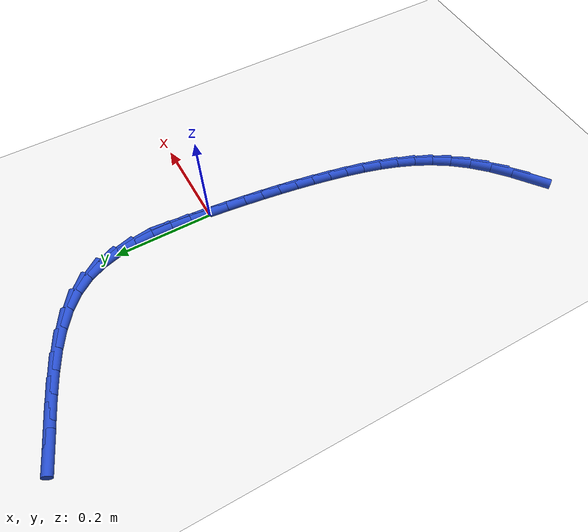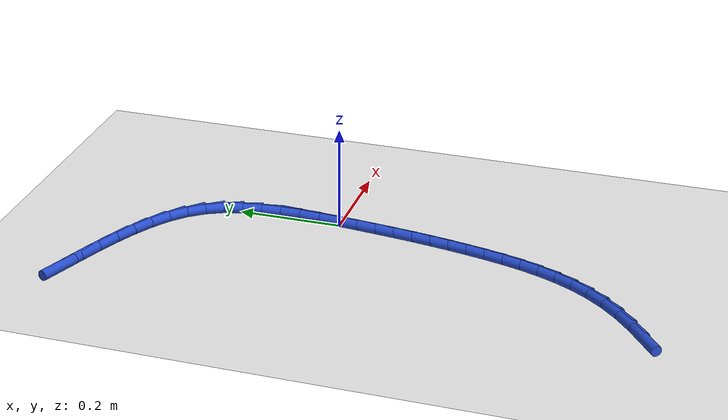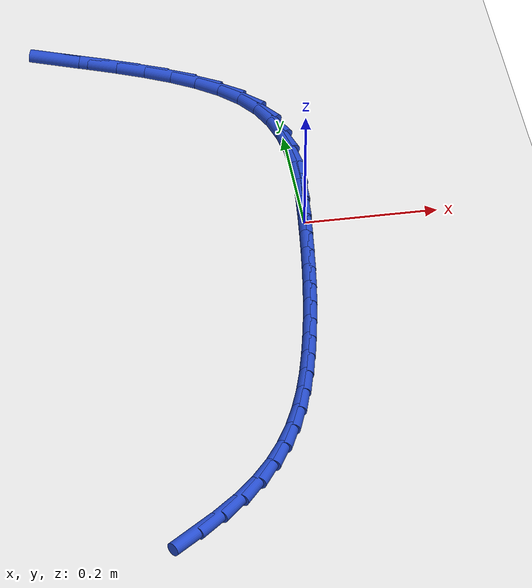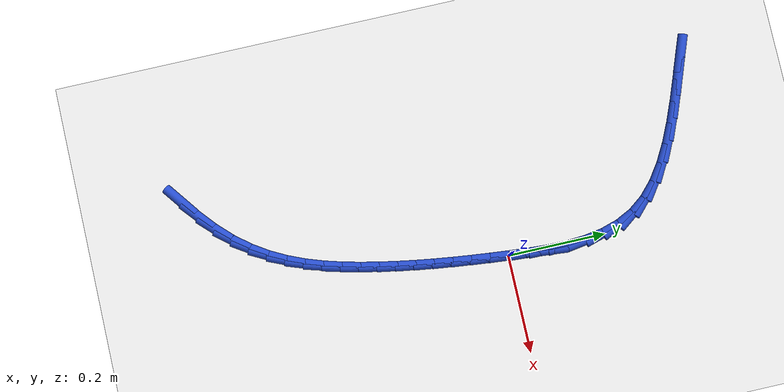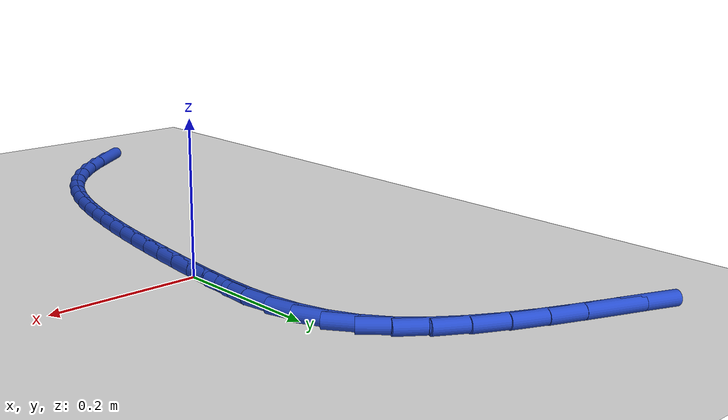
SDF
<sdf version="1.6">
 <world name="default">
  <model name="ground_plane">
   <static>1</static>
   <link name="link">
    <collision name="collision">
     <geometry><plane><normal>0 0 1</normal><size>100 100</size></plane></geometry>
     <surface><friction><ode><mu>100</mu><mu2>50</mu2></ode></friction></surface>
    </collision>
    <visual name="visual">
     <cast_shadows>0</cast_shadows>
     <geometry><plane><normal>0 0 1</normal><size>100 100</size></plane></geometry>
     <material>
      <script><uri>file://media/materials/scripts/gazebo.material</uri><name>Gazebo/WhiteGlow</name></script>
     </material>
    </visual>
   </link>
  </model>
  <model name="line">
   <link name="link_0">
    <pose>2.3418766925686896e-17 0.0 0.01 0 1.57 1.48301899959872</pose>
    <collision name="collision">
     <geometry><cylinder><radius>0.01</radius><length>0.08</length></cylinder></geometry>
    </collision>
    <visual name="visual">
     <material>
      <script><name>Gazebo/Blue</name><uri>file://media/materials/scripts/gazebo.material</uri></script>
     </material>
     <geometry><cylinder><radius>0.01</radius><length>0.08</length></cylinder></geometry>
    </visual>
   </link>
   <link name="link_1">
    <pose>0.0034949813041329756 0.0397141344870754 0.01 0 1.57 1.5102847240519472</pose>
    <collision name="collision">
     <geometry><cylinder><radius>0.01</radius><length>0.08</length></cylinder></geometry>
    </collision>
    <visual name="visual">
     <material>
      <script><name>Gazebo/Blue</name><uri>file://media/materials/scripts/gazebo.material</uri></script>
     </material>
     <geometry><cylinder><radius>0.01</radius><length>0.08</length></cylinder></geometry>
    </visual>
   </link>
   <link name="link_2">
    <pose>0.0059192756810025615 0.07972852129482713 0.01 0 1.57 1.5585514268661935</pose>
    <collision name="collision">
     <geometry><cylinder><radius>0.01</radius><length>0.08</length></cylinder></geometry>
    </collision>
    <visual name="visual">
     <material>
      <script><name>Gazebo/Blue</name><uri>file://media/materials/scripts/gazebo.material</uri></script>
     </material>
     <geometry><cylinder><radius>0.01</radius><length>0.08</length></cylinder></geometry>
    </visual>
   </link>
   <link name="link_3">
    <pose>0.0064058495325591625 0.11946339341128547 0.01 0 1.57 -1.5112361139940027</pose>
    <collision name="collision">
     <geometry><cylinder><radius>0.01</radius><length>0.08</length></cylinder></geometry>
    </collision>
    <visual name="visual">
     <material>
      <script><name>Gazebo/Blue</name><uri>file://media/materials/scripts/gazebo.material</uri></script>
     </material>
     <geometry><cylinder><radius>0.01</radius><length>0.08</length></cylinder></geometry>
    </visual>
   </link>
   <link name="link_4">
    <pose>0.004087669260753157 0.1583389838244806 0.01 0 1.57 -1.4121379047766238</pose>
    <collision name="collision">
     <geometry><cylinder><radius>0.01</radius><length>0.08</length></cylinder></geometry>
    </collision>
    <visual name="visual">
     <material>
      <script><name>Gazebo/Blue</name><uri>file://media/materials/scripts/gazebo.material</uri></script>
     </material>
     <geometry><cylinder><radius>0.01</radius><length>0.08</length></cylinder></geometry>
    </visual>
   </link>
   <link name="link_5">
    <pose>-0.0019022987324650836 0.1957755255224428 0.01 0 1.57 -1.281841797179875</pose>
    <collision name="collision">
     <geometry><cylinder><radius>0.01</radius><length>0.08</length></cylinder></geometry>
    </collision>
    <visual name="visual">
     <material>
      <script><name>Gazebo/Blue</name><uri>file://media/materials/scripts/gazebo.material</uri></script>
     </material>
     <geometry><cylinder><radius>0.01</radius><length>0.08</length></cylinder></geometry>
    </visual>
   </link>
   <link name="link_6">
    <pose>-0.012431088045145165 0.23119325149320227 0.01 0 1.57 -1.1187924314241444</pose>
    <collision name="collision">
     <geometry><cylinder><radius>0.01</radius><length>0.08</length></cylinder></geometry>
    </collision>
    <visual name="visual">
     <material>
      <script><name>Gazebo/Blue</name><uri>file://media/materials/scripts/gazebo.material</uri></script>
     </material>
     <geometry><cylinder><radius>0.01</radius><length>0.08</length></cylinder></geometry>
    </visual>
   </link>
   <link name="link_7">
    <pose>-0.028365732275336713 0.2640123947247892 0.01 0 1.57 -0.9285013209521069</pose>
    <collision name="collision">
     <geometry><cylinder><radius>0.01</radius><length>0.08</length></cylinder></geometry>
    </collision>
    <visual name="visual">
     <material>
      <script><name>Gazebo/Blue</name><uri>file://media/materials/scripts/gazebo.material</uri></script>
     </material>
     <geometry><cylinder><radius>0.01</radius><length>0.08</length></cylinder></geometry>
    </visual>
   </link>
   <link name="link_8">
    <pose>-0.05054990800049826 0.2936657387752331 0.01 0 1.57 -0.7473281466656418</pose>
    <collision name="collision">
     <geometry><cylinder><radius>0.01</radius><length>0.08</length></cylinder></geometry>
    </collision>
    <visual name="visual">
     <material>
      <script><name>Gazebo/Blue</name><uri>file://media/materials/scripts/gazebo.material</uri></script>
     </material>
     <geometry><cylinder><radius>0.01</radius><length>0.08</length></cylinder></geometry>
    </visual>
   </link>
   <link name="link_9">
    <pose>-0.07900170106019329 0.320029686897392 0.01 0 1.57 -0.6088433574216038</pose>
    <collision name="collision">
     <geometry><cylinder><radius>0.01</radius><length>0.08</length></cylinder></geometry>
    </collision>
    <visual name="visual">
     <material>
      <script><name>Gazebo/Blue</name><uri>file://media/materials/scripts/gazebo.material</uri></script>
     </material>
     <geometry><cylinder><radius>0.01</radius><length>0.08</length></cylinder></geometry>
    </visual>
   </link>
   <link name="link_10">
    <pose>-0.11271210713015256 0.34353253495159436 0.01 0 1.57 -0.5081338897813198</pose>
    <collision name="collision">
     <geometry><cylinder><radius>0.01</radius><length>0.08</length></cylinder></geometry>
    </collision>
    <visual name="visual">
     <material>
      <script><name>Gazebo/Blue</name><uri>file://media/materials/scripts/gazebo.material</uri></script>
     </material>
     <geometry><cylinder><radius>0.01</radius><length>0.08</length></cylinder></geometry>
    </visual>
   </link>
   <link name="link_11">
    <pose>-0.15060786151989597 0.3646371082117627 0.01 0 1.57 -0.43727041215176216</pose>
    <collision name="collision">
     <geometry><cylinder><radius>0.01</radius><length>0.08</length></cylinder></geometry>
    </collision>
    <visual name="visual">
     <material>
      <script><name>Gazebo/Blue</name><uri>file://media/materials/scripts/gazebo.material</uri></script>
     </material>
     <geometry><cylinder><radius>0.01</radius><length>0.08</length></cylinder></geometry>
    </visual>
   </link>
   <link name="link_12">
    <pose>-0.19161569953894356 0.3838062319518194 0.01 0 1.57 -0.3900389414905041</pose>
    <collision name="collision">
     <geometry><cylinder><radius>0.01</radius><length>0.08</length></cylinder></geometry>
    </collision>
    <visual name="visual">
     <material>
      <script><name>Gazebo/Blue</name><uri>file://media/materials/scripts/gazebo.material</uri></script>
     </material>
     <geometry><cylinder><radius>0.01</radius><length>0.08</length></cylinder></geometry>
    </visual>
   </link>
   <link name="link_13">
    <pose>-0.2346623564968151 0.401502731445687 0.01 0 1.57 -0.36239353724382734</pose>
    <collision name="collision">
     <geometry><cylinder><radius>0.01</radius><length>0.08</length></cylinder></geometry>
    </collision>
    <visual name="visual">
     <material>
      <script><name>Gazebo/Blue</name><uri>file://media/materials/scripts/gazebo.material</uri></script>
     </material>
     <geometry><cylinder><radius>0.01</radius><length>0.08</length></cylinder></geometry>
    </visual>
   </link>
   <link name="link_14">
    <pose>-0.2786745677030307 0.41818943196728786 0.01 0 1.57 -0.35227594357470493</pose>
    <collision name="collision">
     <geometry><cylinder><radius>0.01</radius><length>0.08</length></cylinder></geometry>
    </collision>
    <visual name="visual">
     <material>
      <script><name>Gazebo/Blue</name><uri>file://media/materials/scripts/gazebo.material</uri></script>
     </material>
     <geometry><cylinder><radius>0.01</radius><length>0.08</length></cylinder></geometry>
    </visual>
   </link>
   <link name="link_15">
    <pose>-0.32257906846711026 0.4343291587905444 0.01 0 1.57 -0.3594734444192918</pose>
    <collision name="collision">
     <geometry><cylinder><radius>0.01</radius><length>0.08</length></cylinder></geometry>
    </collision>
    <visual name="visual">
     <material>
      <script><name>Gazebo/Blue</name><uri>file://media/materials/scripts/gazebo.material</uri></script>
     </material>
     <geometry><cylinder><radius>0.01</radius><length>0.08</length></cylinder></geometry>
    </visual>
   </link>
   <link name="link_202">
    <pose>-0.25317472025781357 -0.6211055958028735 0.01 0 1.57 0.6430635959425327</pose>
    <collision name="collision">
     <geometry><cylinder><radius>0.01</radius><length>0.08</length></cylinder></geometry>
    </collision>
    <visual name="visual">
     <material>
      <script><name>Gazebo/Blue</name><uri>file://media/materials/scripts/gazebo.material</uri></script>
     </material>
     <geometry><cylinder><radius>0.01</radius><length>0.08</length></cylinder></geometry>
    </visual>
   </link>
   <link name="link_203">
    <pose>-0.21678932843575177 -0.5938414173357489 0.01 0 1.57 0.7077977887688617</pose>
    <collision name="collision">
     <geometry><cylinder><radius>0.01</radius><length>0.08</length></cylinder></geometry>
    </collision>
    <visual name="visual">
     <material>
      <script><name>Gazebo/Blue</name><uri>file://media/materials/scripts/gazebo.material</uri></script>
     </material>
     <geometry><cylinder><radius>0.01</radius><length>0.08</length></cylinder></geometry>
    </visual>
   </link>
   <link name="link_204">
    <pose>-0.18353143762279994 -0.5653824169517142 0.01 0 1.57 0.7926581623181073</pose>
    <collision name="collision">
     <geometry><cylinder><radius>0.01</radius><length>0.08</length></cylinder></geometry>
    </collision>
    <visual name="visual">
     <material>
      <script><name>Gazebo/Blue</name><uri>file://media/materials/scripts/gazebo.material</uri></script>
     </material>
     <geometry><cylinder><radius>0.01</radius><length>0.08</length></cylinder></geometry>
    </visual>
   </link>
   <link name="link_205">
    <pose>-0.15413329470514592 -0.5355542837789601 0.01 0 1.57 0.8940287337746962</pose>
    <collision name="collision">
     <geometry><cylinder><radius>0.01</radius><length>0.08</length></cylinder></geometry>
    </collision>
    <visual name="visual">
     <material>
      <script><name>Gazebo/Blue</name><uri>file://media/materials/scripts/gazebo.material</uri></script>
     </material>
     <geometry><cylinder><radius>0.01</radius><length>0.08</length></cylinder></geometry>
    </visual>
   </link>
   <link name="link_206">
    <pose>-0.12901043212374136 -0.5042808464207654 0.01 0 1.57 0.9934075039642429</pose>
    <collision name="collision">
     <geometry><cylinder><radius>0.01</radius><length>0.08</length></cylinder></geometry>
    </collision>
    <visual name="visual">
     <material>
      <script><name>Gazebo/Blue</name><uri>file://media/materials/scripts/gazebo.material</uri></script>
     </material>
     <geometry><cylinder><radius>0.01</radius><length>0.08</length></cylinder></geometry>
    </visual>
   </link>
   <link name="link_207">
    <pose>-0.10780295137189927 -0.47172621423587374 0.01 0 1.57 1.0847941595795938</pose>
    <collision name="collision">
     <geometry><cylinder><radius>0.01</radius><length>0.08</length></cylinder></geometry>
    </collision>
    <visual name="visual">
     <material>
      <script><name>Gazebo/Blue</name><uri>file://media/materials/scripts/gazebo.material</uri></script>
     </material>
     <geometry><cylinder><radius>0.01</radius><length>0.08</length></cylinder></geometry>
    </visual>
   </link>
   <link name="link_208">
    <pose>-0.09003446886937586 -0.43809059150748647 0.01 0 1.57 1.1655834305809623</pose>
    <collision name="collision">
     <geometry><cylinder><radius>0.01</radius><length>0.08</length></cylinder></geometry>
    </collision>
    <visual name="visual">
     <material>
      <script><name>Gazebo/Blue</name><uri>file://media/materials/scripts/gazebo.material</uri></script>
     </material>
     <geometry><cylinder><radius>0.01</radius><length>0.08</length></cylinder></geometry>
    </visual>
   </link>
   <link name="link_209">
    <pose>-0.07522860103592584 -0.40357418251880256 0.01 0 1.57 1.2341040453368506</pose>
    <collision name="collision">
     <geometry><cylinder><radius>0.01</radius><length>0.08</length></cylinder></geometry>
    </collision>
    <visual name="visual">
     <material>
      <script><name>Gazebo/Blue</name><uri>file://media/materials/scripts/gazebo.material</uri></script>
     </material>
     <geometry><cylinder><radius>0.01</radius><length>0.08</length></cylinder></geometry>
    </visual>
   </link>
   <link name="link_210">
    <pose>-0.06290896429130453 -0.3683771915530215 0.01 0 1.57 1.2894866759773853</pose>
    <collision name="collision">
     <geometry><cylinder><radius>0.01</radius><length>0.08</length></cylinder></geometry>
    </collision>
    <visual name="visual">
     <material>
      <script><name>Gazebo/Blue</name><uri>file://media/materials/scripts/gazebo.material</uri></script>
     </material>
     <geometry><cylinder><radius>0.01</radius><length>0.08</length></cylinder></geometry>
    </visual>
   </link>
   <link name="link_211">
    <pose>-0.05259917505526715 -0.3326998228933428 0.01 0 1.57 1.3314021703295187</pose>
    <collision name="collision">
     <geometry><cylinder><radius>0.01</radius><length>0.08</length></cylinder></geometry>
    </collision>
    <visual name="visual">
     <material>
      <script><name>Gazebo/Blue</name><uri>file://media/materials/scripts/gazebo.material</uri></script>
     </material>
     <geometry><cylinder><radius>0.01</radius><length>0.08</length></cylinder></geometry>
    </visual>
   </link>
   <link name="link_212">
    <pose>-0.04382284974756873 -0.2967422808229651 0.01 0 1.57 1.3601869015509487</pose>
    <collision name="collision">
     <geometry><cylinder><radius>0.01</radius><length>0.08</length></cylinder></geometry>
    </collision>
    <visual name="visual">
     <material>
      <script><name>Gazebo/Blue</name><uri>file://media/materials/scripts/gazebo.material</uri></script>
     </material>
     <geometry><cylinder><radius>0.01</radius><length>0.08</length></cylinder></geometry>
    </visual>
   </link>
   <link name="link_213">
    <pose>-0.03611652137881023 -0.26069428100625053 0.01 0 1.57 1.382199771338639</pose>
    <collision name="collision">
     <geometry><cylinder><radius>0.01</radius><length>0.08</length></cylinder></geometry>
    </collision>
    <visual name="visual">
     <material>
      <script><name>Gazebo/Blue</name><uri>file://media/materials/scripts/gazebo.material</uri></script>
     </material>
     <geometry><cylinder><radius>0.01</radius><length>0.08</length></cylinder></geometry>
    </visual>
   </link>
   <link name="link_214">
    <pose>-0.029223172194005838 -0.22457789678185525 0.01 0 1.57 1.402382755868558</pose>
    <collision name="collision">
     <geometry><cylinder><radius>0.01</radius><length>0.08</length></cylinder></geometry>
    </collision>
    <visual name="visual">
     <material>
      <script><name>Gazebo/Blue</name><uri>file://media/materials/scripts/gazebo.material</uri></script>
     </material>
     <geometry><cylinder><radius>0.01</radius><length>0.08</length></cylinder></geometry>
    </visual>
   </link>
   <link name="link_215">
    <pose>-0.023051731481360156 -0.18828044803031402 0.01 0 1.57 1.4206597065632085</pose>
    <collision name="collision">
     <geometry><cylinder><radius>0.01</radius><length>0.08</length></cylinder></geometry>
    </collision>
    <visual name="visual">
     <material>
      <script><name>Gazebo/Blue</name><uri>file://media/materials/scripts/gazebo.material</uri></script>
     </material>
     <geometry><cylinder><radius>0.01</radius><length>0.08</length></cylinder></geometry>
    </visual>
   </link>
   <link name="link_216">
    <pose>-0.01751582338371557 -0.15168544228404265 0.01 0 1.57 1.4368589402293723</pose>
    <collision name="collision">
     <geometry><cylinder><radius>0.01</radius><length>0.08</length></cylinder></geometry>
    </collision>
    <visual name="visual">
     <material>
      <script><name>Gazebo/Blue</name><uri>file://media/materials/scripts/gazebo.material</uri></script>
     </material>
     <geometry><cylinder><radius>0.01</radius><length>0.08</length></cylinder></geometry>
    </visual>
   </link>
   <link name="link_217">
    <pose>-0.012529072043914846 -0.11467638707545959 0.01 0 1.57 1.450862738682605</pose>
    <collision name="collision">
     <geometry><cylinder><radius>0.01</radius><length>0.08</length></cylinder></geometry>
    </collision>
    <visual name="visual">
     <material>
      <script><name>Gazebo/Blue</name><uri>file://media/materials/scripts/gazebo.material</uri></script>
     </material>
     <geometry><cylinder><radius>0.01</radius><length>0.08</length></cylinder></geometry>
    </visual>
   </link>
   <link name="link_218">
    <pose>-0.00800510160480035 -0.0771367899369805 0.01 0 1.57 1.4626074034155443</pose>
    <collision name="collision">
     <geometry><cylinder><radius>0.01</radius><length>0.08</length></cylinder></geometry>
    </collision>
    <visual name="visual">
     <material>
      <script><name>Gazebo/Blue</name><uri>file://media/materials/scripts/gazebo.material</uri></script>
     </material>
     <geometry><cylinder><radius>0.01</radius><length>0.08</length></cylinder></geometry>
    </visual>
   </link>
   <link name="link_219">
    <pose>-0.0038575362092145827 -0.038950158401022034 0.01 0 1.57 1.4720804835210417</pose>
    <collision name="collision">
     <geometry><cylinder><radius>0.01</radius><length>0.08</length></cylinder></geometry>
    </collision>
    <visual name="visual">
     <material>
      <script><name>Gazebo/Blue</name><uri>file://media/materials/scripts/gazebo.material</uri></script>
     </material>
     <geometry><cylinder><radius>0.01</radius><length>0.08</length></cylinder></geometry>
    </visual>
   </link>
   <link name="link_220">
    <pose>3.903127820947816e-17 1.457167719820518e-16 0.01 0 1.57 1.4793158296202185</pose>
    <collision name="collision">
     <geometry><cylinder><radius>0.01</radius><length>0.08</length></cylinder></geometry>
    </collision>
    <visual name="visual">
     <material>
      <script><name>Gazebo/Blue</name><uri>file://media/materials/scripts/gazebo.material</uri></script>
     </material>
     <geometry><cylinder><radius>0.01</radius><length>0.08</length></cylinder></geometry>
    </visual>
   </link>
   <link name="link_221">
    <pose>0.003653882880000735 0.03983017773366652 0.01 0 1.57 1.484387191089402</pose>
    <collision name="collision">
     <geometry><cylinder><radius>0.01</radius><length>0.08</length></cylinder></geometry>
    </collision>
    <visual name="visual">
     <material>
      <script><name>Gazebo/Blue</name><uri>file://media/materials/scripts/gazebo.material</uri></script>
     </material>
     <geometry><cylinder><radius>0.01</radius><length>0.08</length></cylinder></geometry>
    </visual>
   </link>
   <link name="link_222">
    <pose>0.00719048828794536 0.08065686726756435 0.01 0 1.57 1.4818822653222767</pose>
    <collision name="collision">
     <geometry><cylinder><radius>0.01</radius><length>0.08</length></cylinder></geometry>
    </collision>
    <visual name="visual">
     <material>
      <script><name>Gazebo/Blue</name><uri>file://media/materials/scripts/gazebo.material</uri></script>
     </material>
     <geometry><cylinder><radius>0.01</radius><length>0.08</length></cylinder></geometry>
    </visual>
   </link>
  </model>
 </world>
</sdf>
